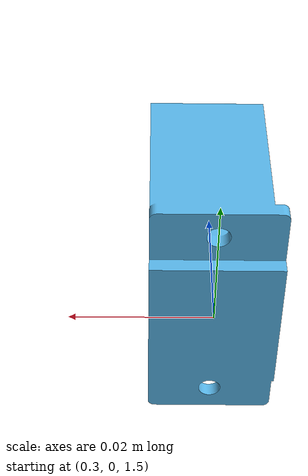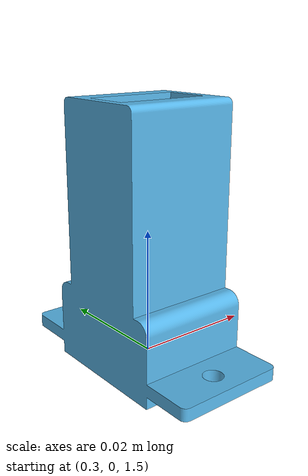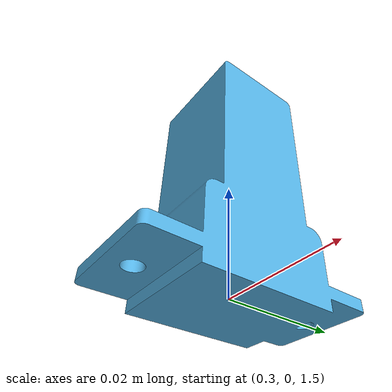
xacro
<?xml version="1.0"?>
<robot xmlns:xacro="http://wiki.ros.org/xacro" name='USB_Female'>
  <mujoco>
  <compiler meshdir ="$(find panda_simulation)/meshes/visual"/>
  </mujoco>
  <link name="world"/>
  <link name="USB_Female_link">
    <inertial>
            <origin xyz="0 0 0" rpy="0 0 0"/>
            <mass value="1"/>
            <inertia ixx="100"  ixy="0"  ixz="0" iyy="100" iyz="0" izz="100" />
    </inertial>
    <visual>
      <geometry>
        <mesh filename="file://$(find panda_simulation)/meshes/visual/USB_Female.stl" scale="0.001 0.001 0.001"/>
      </geometry>
    </visual>
    <collision>
      <geometry>
        <mesh filename="file://$(find panda_simulation)/meshes/visual/USB_Female.stl" scale="0.001 0.001 0.001"/>
      </geometry>
    </collision>
  </link>
  <joint name="fixed_joint" type="fixed">
    <parent link="world"/>
    <child link="USB_Female_link"/>
    <origin rpy="0 0 0" xyz="0.3 0 1.5"/> <!-- Adjust the position and orientation if needed -->
  </joint>

</robot>
